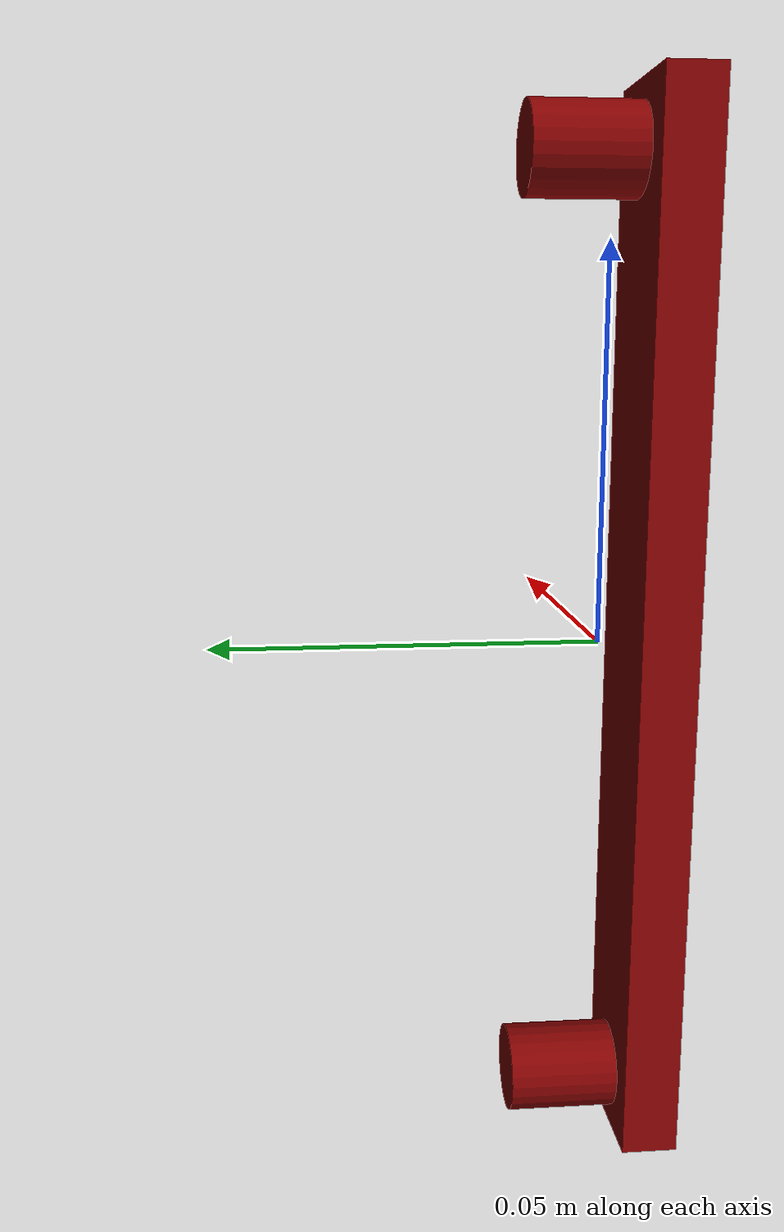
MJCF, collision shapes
<?xml version='1.0' encoding='UTF-8'?>
<mujoco model="model">
  <option timestep="0.002" gravity="0.0 0.0 -9.81"/>
  <compiler angle="radian"/>
  <asset>
    <mesh file="visuals/CabinetHandle038.obj" name="CabinetHandle038_vis"/>
    <texture file="visuals/T_BC001.png" name="tex" type="2d"/>
    <material name="mat" rgba="1 1 1 1.0" texture="tex" shininess="0.4472135901451111" specular="0.3103448502657381"/>
  </asset>
  <default>
    <default class="visual">
      <geom conaffinity="0" contype="0" group="1" type="mesh"/>
    </default>
    <default class="collision">
      <geom group="0" rgba="0.5 0 0 0.5" density="1.0" solref="0.004 1" solimp="0.998 0.998 0.001"/>
    </default>
    <default class="spawn">
      <geom group="0" rgba="1 1 1 0.5" contype="0" conaffinity="0"/>
      <site group="0" rgba="1 1 1 0.5"/>
    </default>
    <default class="region">
      <geom group="1" conaffinity="0" contype="0" rgba="0 1 0 0" mass="0"/>
    </default>
  </default>
  <worldbody>
    <body>
      <body name="object">
        <geom mesh="CabinetHandle038_vis" type="mesh" solimp="0.998 0.998 0.001" solref="0.001 1" friction="0.95 0.3 0.1" class="visual" material="mat"/>
        <geom type="box" pos="5.239645815890981e-06 -0.006948983296751976 0.00011264387285336852" size="0.009334715083241463 0.0036755423061549664 0.06822261959314346" quat="1.0 0.0 0.0 0.0" class="collision"/>
        <geom type="cylinder" pos="4.1593371861381456e-05 0.0038107505533844233 0.06010641157627106" size="0.005676853936165571 0.007001516874879599" quat="0.7071067094802856 0.7071068286895752 0.0 0.0" class="collision"/>
        <geom type="cylinder" pos="4.1593371861381456e-05 0.003946599550545216 -0.060061752796173096" size="0.005676853936165571 0.007137365639209747" quat="0.7071067094802856 0.7071068286895752 0.0 0.0" class="collision"/>
        <geom class="region" name="reg_main" type="box" pos="0.0 0.0 0.0" size="0.010103791788220406 0.011556786321103574 0.06884061342477799"/>
      </body>
    </body>
  </worldbody>
  <actuator/>
</mujoco>
